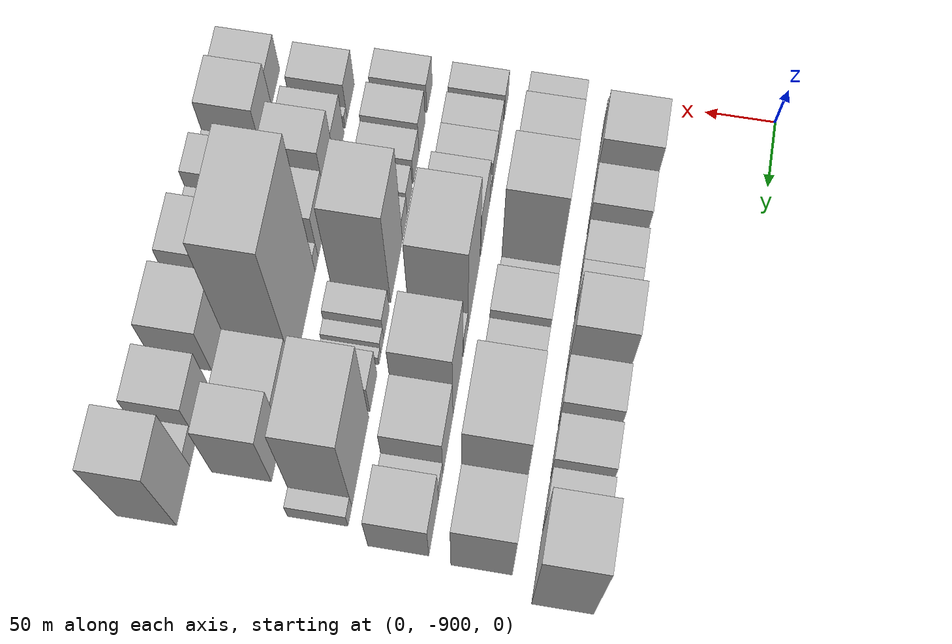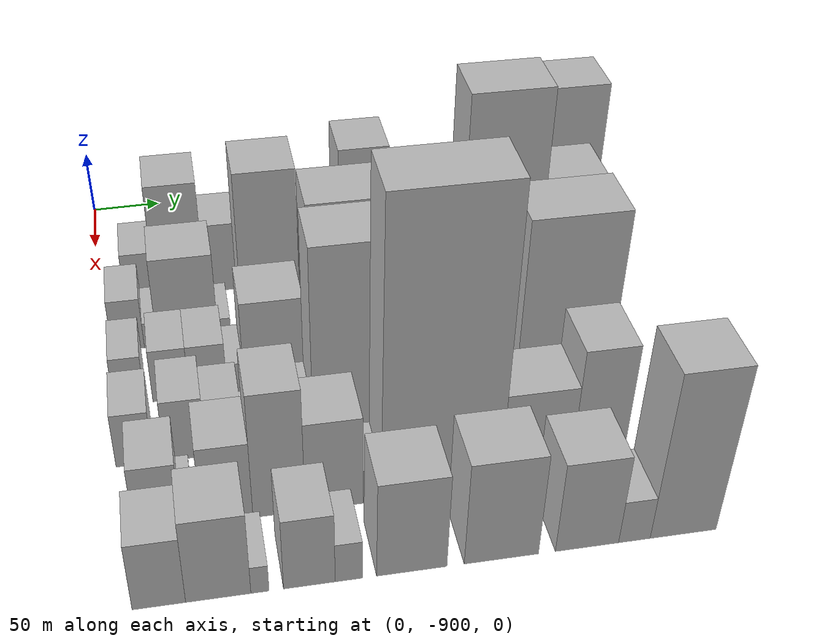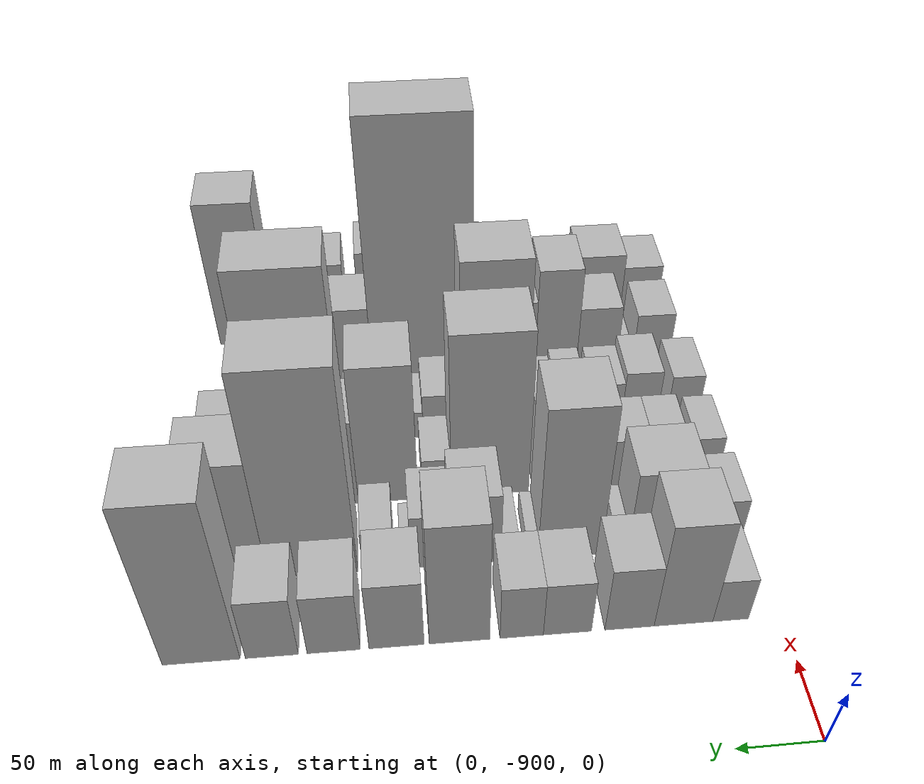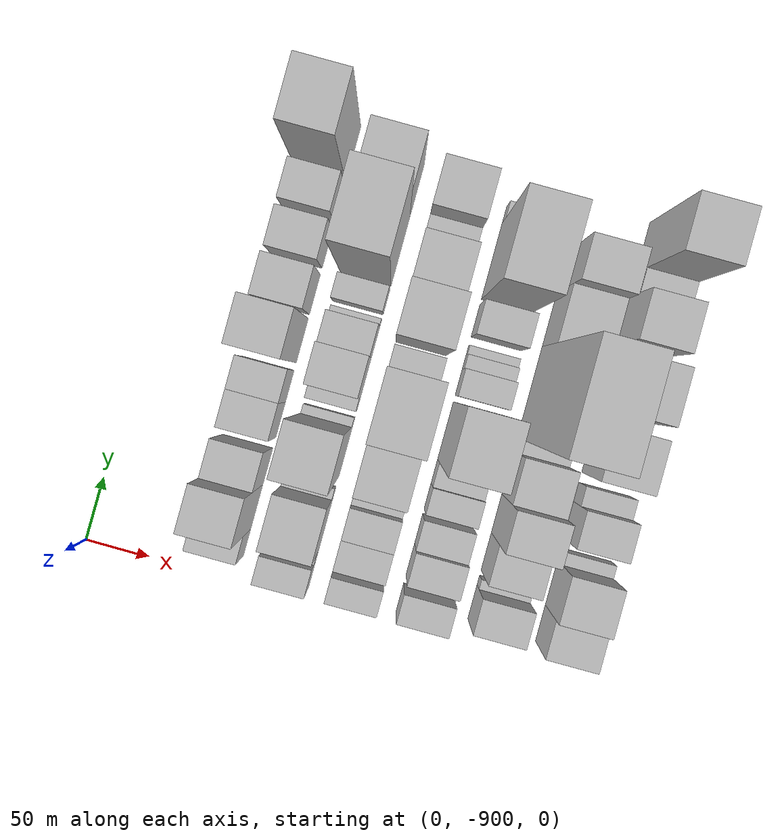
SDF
<sdf version="1.6">
 <world name="default">
  <model name="building_1">
   <static>1</static>
   <pose>100.0000 -869.1969 0 0.000000 0.000000 0.000000</pose>
   <link name="link">
    <pose>0 0 19.50 0 0 0</pose>
    <collision name="collision"><geometry><box><size>40.0000 21.6063 39.0000</size></box></geometry></collision>
    <visual name="visual">
     <cast_shadows>0</cast_shadows>
     <geometry><box><size>40.0000 21.6063 39.0000</size></box></geometry>
     <material>
      <script>
       <uri>model://HANNAS_wall/materials/scripts</uri>
       <uri>model://HANNAS_wall/materials/textures</uri>
       <name>vrc/HANNAS_wall</name>
      </script>
     </material>
    </visual>
   </link>
  </model>
  <model name="building_2">
   <static>1</static>
   <pose>100.0000 -840.7150 0 0.000000 0.000000 0.000000</pose>
   <link name="link">
    <pose>0 0 46.50 0 0 0</pose>
    <collision name="collision"><geometry><box><size>40.0000 35.3574 93.0000</size></box></geometry></collision>
    <visual name="visual">
     <cast_shadows>0</cast_shadows>
     <geometry><box><size>40.0000 35.3574 93.0000</size></box></geometry>
     <material>
      <script>
       <uri>model://HANNAS_wall/materials/scripts</uri>
       <uri>model://HANNAS_wall/materials/textures</uri>
       <name>vrc/HANNAS_wall</name>
      </script>
     </material>
    </visual>
   </link>
  </model>
  <model name="building_3">
   <static>1</static>
   <pose>100.0000 -808.2781 0 0.000000 0.000000 0.000000</pose>
   <link name="link">
    <pose>0 0 28.50 0 0 0</pose>
    <collision name="collision"><geometry><box><size>40.0000 29.5164 57.0000</size></box></geometry></collision>
    <visual name="visual">
     <cast_shadows>0</cast_shadows>
     <geometry><box><size>40.0000 29.5164 57.0000</size></box></geometry>
     <material>
      <script>
       <uri>model://HANNAS_wall/materials/scripts</uri>
       <uri>model://HANNAS_wall/materials/textures</uri>
       <name>vrc/HANNAS_wall</name>
      </script>
     </material>
    </visual>
   </link>
  </model>
  <model name="building_4">
   <static>1</static>
   <pose>100.0000 -771.2189 0 0.000000 0.000000 0.000000</pose>
   <link name="link">
    <pose>0 0 24.00 0 0 0</pose>
    <collision name="collision"><geometry><box><size>40.0000 28.6018 48.0000</size></box></geometry></collision>
    <visual name="visual">
     <cast_shadows>0</cast_shadows>
     <geometry><box><size>40.0000 28.6018 48.0000</size></box></geometry>
     <material>
      <script>
       <uri>model://HANNAS_wall/materials/scripts</uri>
       <uri>model://HANNAS_wall/materials/textures</uri>
       <name>vrc/HANNAS_wall</name>
      </script>
     </material>
    </visual>
   </link>
  </model>
  <model name="building_5">
   <static>1</static>
   <pose>100.0000 -744.1187 0 0.000000 0.000000 0.000000</pose>
   <link name="link">
    <pose>0 0 24.00 0 0 0</pose>
    <collision name="collision"><geometry><box><size>40.0000 25.5986 48.0000</size></box></geometry></collision>
    <visual name="visual">
     <cast_shadows>0</cast_shadows>
     <geometry><box><size>40.0000 25.5986 48.0000</size></box></geometry>
     <material>
      <script>
       <uri>model://HANNAS_wall/materials/scripts</uri>
       <uri>model://HANNAS_wall/materials/textures</uri>
       <name>vrc/HANNAS_wall</name>
      </script>
     </material>
    </visual>
   </link>
  </model>
  <model name="building_6">
   <static>1</static>
   <pose>100.0000 -707.5816 0 0.000000 0.000000 0.000000</pose>
   <link name="link">
    <pose>0 0 54.00 0 0 0</pose>
    <collision name="collision"><geometry><box><size>40.0000 35.4757 108.0000</size></box></geometry></collision>
    <visual name="visual">
     <cast_shadows>0</cast_shadows>
     <geometry><box><size>40.0000 35.4757 108.0000</size></box></geometry>
     <material>
      <script>
       <uri>model://HANNAS_wall/materials/scripts</uri>
       <uri>model://HANNAS_wall/materials/textures</uri>
       <name>vrc/HANNAS_wall</name>
      </script>
     </material>
    </visual>
   </link>
  </model>
  <model name="building_7">
   <static>1</static>
   <pose>100.0000 -670.7844 0 0.000000 0.000000 0.000000</pose>
   <link name="link">
    <pose>0 0 30.00 0 0 0</pose>
    <collision name="collision"><geometry><box><size>40.0000 32.1186 60.0000</size></box></geometry></collision>
    <visual name="visual">
     <cast_shadows>0</cast_shadows>
     <geometry><box><size>40.0000 32.1186 60.0000</size></box></geometry>
     <material>
      <script>
       <uri>model://HANNAS_wall/materials/scripts</uri>
       <uri>model://HANNAS_wall/materials/textures</uri>
       <name>vrc/HANNAS_wall</name>
      </script>
     </material>
    </visual>
   </link>
  </model>
  <model name="building_8">
   <static>1</static>
   <pose>100.0000 -634.3555 0 0.000000 0.000000 0.000000</pose>
   <link name="link">
    <pose>0 0 27.00 0 0 0</pose>
    <collision name="collision"><geometry><box><size>40.0000 30.7391 54.0000</size></box></geometry></collision>
    <visual name="visual">
     <cast_shadows>0</cast_shadows>
     <geometry><box><size>40.0000 30.7391 54.0000</size></box></geometry>
     <material>
      <script>
       <uri>model://HANNAS_wall/materials/scripts</uri>
       <uri>model://HANNAS_wall/materials/textures</uri>
       <name>vrc/HANNAS_wall</name>
      </script>
     </material>
    </visual>
   </link>
  </model>
  <model name="building_9">
   <static>1</static>
   <pose>100.0000 -598.7894 0 0.000000 0.000000 0.000000</pose>
   <link name="link">
    <pose>0 0 27.00 0 0 0</pose>
    <collision name="collision"><geometry><box><size>40.0000 30.3932 54.0000</size></box></geometry></collision>
    <visual name="visual">
     <cast_shadows>0</cast_shadows>
     <geometry><box><size>40.0000 30.3932 54.0000</size></box></geometry>
     <material>
      <script>
       <uri>model://HANNAS_wall/materials/scripts</uri>
       <uri>model://HANNAS_wall/materials/textures</uri>
       <name>vrc/HANNAS_wall</name>
      </script>
     </material>
    </visual>
   </link>
  </model>
  <model name="building_10">
   <static>1</static>
   <pose>100.0000 -558.4345 0 0.000000 0.000000 0.000000</pose>
   <link name="link">
    <pose>0 0 70.50 0 0 0</pose>
    <collision name="collision"><geometry><box><size>40.0000 44.3166 141.0000</size></box></geometry></collision>
    <visual name="visual">
     <cast_shadows>0</cast_shadows>
     <geometry><box><size>40.0000 44.3166 141.0000</size></box></geometry>
     <material>
      <script>
       <uri>model://HANNAS_wall/materials/scripts</uri>
       <uri>model://HANNAS_wall/materials/textures</uri>
       <name>vrc/HANNAS_wall</name>
      </script>
     </material>
    </visual>
   </link>
  </model>
  <model name="building_55">
   <static>1</static>
   <pose>155.0000 -879.1581 0 0.000000 0.000000 0.000000</pose>
   <link name="link">
    <pose>0 0 21.00 0 0 0</pose>
    <collision name="collision"><geometry><box><size>40.0000 21.6838 42.0000</size></box></geometry></collision>
    <visual name="visual">
     <cast_shadows>0</cast_shadows>
     <geometry><box><size>40.0000 21.6838 42.0000</size></box></geometry>
     <material>
      <script>
       <uri>model://HANNAS_wall/materials/scripts</uri>
       <uri>model://HANNAS_wall/materials/textures</uri>
       <name>vrc/HANNAS_wall</name>
      </script>
     </material>
    </visual>
   </link>
  </model>
  <model name="building_56">
   <static>1</static>
   <pose>155.0000 -863.9852 0 0.000000 0.000000 0.000000</pose>
   <link name="link">
    <pose>0 0 10.50 0 0 0</pose>
    <collision name="collision"><geometry><box><size>40.0000 8.6621 21.0000</size></box></geometry></collision>
    <visual name="visual">
     <cast_shadows>0</cast_shadows>
     <geometry><box><size>40.0000 8.6621 21.0000</size></box></geometry>
     <material>
      <script>
       <uri>model://HANNAS_wall/materials/scripts</uri>
       <uri>model://HANNAS_wall/materials/textures</uri>
       <name>vrc/HANNAS_wall</name>
      </script>
     </material>
    </visual>
   </link>
  </model>
  <model name="building_57">
   <static>1</static>
   <pose>155.0000 -838.8582 0 0.000000 0.000000 0.000000</pose>
   <link name="link">
    <pose>0 0 36.00 0 0 0</pose>
    <collision name="collision"><geometry><box><size>40.0000 41.5917 72.0000</size></box></geometry></collision>
    <visual name="visual">
     <cast_shadows>0</cast_shadows>
     <geometry><box><size>40.0000 41.5917 72.0000</size></box></geometry>
     <material>
      <script>
       <uri>model://HANNAS_wall/materials/scripts</uri>
       <uri>model://HANNAS_wall/materials/textures</uri>
       <name>vrc/HANNAS_wall</name>
      </script>
     </material>
    </visual>
   </link>
  </model>
  <model name="building_58">
   <static>1</static>
   <pose>155.0000 -813.6436 0 0.000000 0.000000 0.000000</pose>
   <link name="link">
    <pose>0 0 9.00 0 0 0</pose>
    <collision name="collision"><geometry><box><size>40.0000 8.8376 18.0000</size></box></geometry></collision>
    <visual name="visual">
     <cast_shadows>0</cast_shadows>
     <geometry><box><size>40.0000 8.8376 18.0000</size></box></geometry>
     <material>
      <script>
       <uri>model://HANNAS_wall/materials/scripts</uri>
       <uri>model://HANNAS_wall/materials/textures</uri>
       <name>vrc/HANNAS_wall</name>
      </script>
     </material>
    </visual>
   </link>
  </model>
  <model name="building_59">
   <static>1</static>
   <pose>155.0000 -781.1763 0 0.000000 0.000000 0.000000</pose>
   <link name="link">
    <pose>0 0 66.00 0 0 0</pose>
    <collision name="collision"><geometry><box><size>40.0000 40.0968 132.0000</size></box></geometry></collision>
    <visual name="visual">
     <cast_shadows>0</cast_shadows>
     <geometry><box><size>40.0000 40.0968 132.0000</size></box></geometry>
     <material>
      <script>
       <uri>model://HANNAS_wall/materials/scripts</uri>
       <uri>model://HANNAS_wall/materials/textures</uri>
       <name>vrc/HANNAS_wall</name>
      </script>
     </material>
    </visual>
   </link>
  </model>
  <model name="building_60">
   <static>1</static>
   <pose>155.0000 -757.4105 0 0.000000 0.000000 0.000000</pose>
   <link name="link">
    <pose>0 0 9.00 0 0 0</pose>
    <collision name="collision"><geometry><box><size>40.0000 7.4349 18.0000</size></box></geometry></collision>
    <visual name="visual">
     <cast_shadows>0</cast_shadows>
     <geometry><box><size>40.0000 7.4349 18.0000</size></box></geometry>
     <material>
      <script>
       <uri>model://HANNAS_wall/materials/scripts</uri>
       <uri>model://HANNAS_wall/materials/textures</uri>
       <name>vrc/HANNAS_wall</name>
      </script>
     </material>
    </visual>
   </link>
  </model>
  <model name="building_61">
   <static>1</static>
   <pose>155.0000 -743.4360 0 0.000000 0.000000 0.000000</pose>
   <link name="link">
    <pose>0 0 12.00 0 0 0</pose>
    <collision name="collision"><geometry><box><size>40.0000 10.5141 24.0000</size></box></geometry></collision>
    <visual name="visual">
     <cast_shadows>0</cast_shadows>
     <geometry><box><size>40.0000 10.5141 24.0000</size></box></geometry>
     <material>
      <script>
       <uri>model://HANNAS_wall/materials/scripts</uri>
       <uri>model://HANNAS_wall/materials/textures</uri>
       <name>vrc/HANNAS_wall</name>
      </script>
     </material>
    </visual>
   </link>
  </model>
  <model name="building_62">
   <static>1</static>
   <pose>155.0000 -722.3975 0 0.000000 0.000000 0.000000</pose>
   <link name="link">
    <pose>0 0 31.50 0 0 0</pose>
    <collision name="collision"><geometry><box><size>40.0000 31.5630 63.0000</size></box></geometry></collision>
    <visual name="visual">
     <cast_shadows>0</cast_shadows>
     <geometry><box><size>40.0000 31.5630 63.0000</size></box></geometry>
     <material>
      <script>
       <uri>model://HANNAS_wall/materials/scripts</uri>
       <uri>model://HANNAS_wall/materials/textures</uri>
       <name>vrc/HANNAS_wall</name>
      </script>
     </material>
    </visual>
   </link>
  </model>
  <model name="building_63">
   <static>1</static>
   <pose>155.0000 -694.3487 0 0.000000 0.000000 0.000000</pose>
   <link name="link">
    <pose>0 0 24.00 0 0 0</pose>
    <collision name="collision"><geometry><box><size>40.0000 24.5346 48.0000</size></box></geometry></collision>
    <visual name="visual">
     <cast_shadows>0</cast_shadows>
     <geometry><box><size>40.0000 24.5346 48.0000</size></box></geometry>
     <material>
      <script>
       <uri>model://HANNAS_wall/materials/scripts</uri>
       <uri>model://HANNAS_wall/materials/textures</uri>
       <name>vrc/HANNAS_wall</name>
      </script>
     </material>
    </visual>
   </link>
  </model>
  <model name="building_64">
   <static>1</static>
   <pose>155.0000 -678.9963 0 0.000000 0.000000 0.000000</pose>
   <link name="link">
    <pose>0 0 7.50 0 0 0</pose>
    <collision name="collision"><geometry><box><size>40.0000 6.1702 15.0000</size></box></geometry></collision>
    <visual name="visual">
     <cast_shadows>0</cast_shadows>
     <geometry><box><size>40.0000 6.1702 15.0000</size></box></geometry>
     <material>
      <script>
       <uri>model://HANNAS_wall/materials/scripts</uri>
       <uri>model://HANNAS_wall/materials/textures</uri>
       <name>vrc/HANNAS_wall</name>
      </script>
     </material>
    </visual>
   </link>
  </model>
  <model name="building_65">
   <static>1</static>
   <pose>155.0000 -662.1134 0 0.000000 0.000000 0.000000</pose>
   <link name="link">
    <pose>0 0 18.00 0 0 0</pose>
    <collision name="collision"><geometry><box><size>40.0000 19.5956 36.0000</size></box></geometry></collision>
    <visual name="visual">
     <cast_shadows>0</cast_shadows>
     <geometry><box><size>40.0000 19.5956 36.0000</size></box></geometry>
     <material>
      <script>
       <uri>model://HANNAS_wall/materials/scripts</uri>
       <uri>model://HANNAS_wall/materials/textures</uri>
       <name>vrc/HANNAS_wall</name>
      </script>
     </material>
    </visual>
   </link>
  </model>
  <model name="building_66">
   <static>1</static>
   <pose>155.0000 -621.7221 0 0.000000 0.000000 0.000000</pose>
   <link name="link">
    <pose>0 0 87.00 0 0 0</pose>
    <collision name="collision"><geometry><box><size>40.0000 55.1869 174.0000</size></box></geometry></collision>
    <visual name="visual">
     <cast_shadows>0</cast_shadows>
     <geometry><box><size>40.0000 55.1869 174.0000</size></box></geometry>
     <material>
      <script>
       <uri>model://HANNAS_wall/materials/scripts</uri>
       <uri>model://HANNAS_wall/materials/textures</uri>
       <name>vrc/HANNAS_wall</name>
      </script>
     </material>
    </visual>
   </link>
  </model>
  <model name="building_67">
   <static>1</static>
   <pose>155.0000 -573.3513 0 0.000000 0.000000 0.000000</pose>
   <link name="link">
    <pose>0 0 52.50 0 0 0</pose>
    <collision name="collision"><geometry><box><size>40.0000 41.5547 105.0000</size></box></geometry></collision>
    <visual name="visual">
     <cast_shadows>0</cast_shadows>
     <geometry><box><size>40.0000 41.5547 105.0000</size></box></geometry>
     <material>
      <script>
       <uri>model://HANNAS_wall/materials/scripts</uri>
       <uri>model://HANNAS_wall/materials/textures</uri>
       <name>vrc/HANNAS_wall</name>
      </script>
     </material>
    </visual>
   </link>
  </model>
  <model name="building_108">
   <static>1</static>
   <pose>210.0000 -880.0709 0 0.000000 0.000000 0.000000</pose>
   <link name="link">
    <pose>0 0 19.50 0 0 0</pose>
    <collision name="collision"><geometry><box><size>40.0000 19.8581 39.0000</size></box></geometry></collision>
    <visual name="visual">
     <cast_shadows>0</cast_shadows>
     <geometry><box><size>40.0000 19.8581 39.0000</size></box></geometry>
     <material>
      <script>
       <uri>model://HANNAS_wall/materials/scripts</uri>
       <uri>model://HANNAS_wall/materials/textures</uri>
       <name>vrc/HANNAS_wall</name>
      </script>
     </material>
    </visual>
   </link>
  </model>
  <model name="building_109">
   <static>1</static>
   <pose>210.0000 -853.3707 0 0.000000 0.000000 0.000000</pose>
   <link name="link">
    <pose>0 0 21.00 0 0 0</pose>
    <collision name="collision"><geometry><box><size>40.0000 23.5423 42.0000</size></box></geometry></collision>
    <visual name="visual">
     <cast_shadows>0</cast_shadows>
     <geometry><box><size>40.0000 23.5423 42.0000</size></box></geometry>
     <material>
      <script>
       <uri>model://HANNAS_wall/materials/scripts</uri>
       <uri>model://HANNAS_wall/materials/textures</uri>
       <name>vrc/HANNAS_wall</name>
      </script>
     </material>
    </visual>
   </link>
  </model>
  <model name="building_110">
   <static>1</static>
   <pose>210.0000 -829.2890 0 0.000000 0.000000 0.000000</pose>
   <link name="link">
    <pose>0 0 21.00 0 0 0</pose>
    <collision name="collision"><geometry><box><size>40.0000 24.6212 42.0000</size></box></geometry></collision>
    <visual name="visual">
     <cast_shadows>0</cast_shadows>
     <geometry><box><size>40.0000 24.6212 42.0000</size></box></geometry>
     <material>
      <script>
       <uri>model://HANNAS_wall/materials/scripts</uri>
       <uri>model://HANNAS_wall/materials/textures</uri>
       <name>vrc/HANNAS_wall</name>
      </script>
     </material>
    </visual>
   </link>
  </model>
  <model name="building_111">
   <static>1</static>
   <pose>210.0000 -811.3701 0 0.000000 0.000000 0.000000</pose>
   <link name="link">
    <pose>0 0 12.00 0 0 0</pose>
    <collision name="collision"><geometry><box><size>40.0000 11.2167 24.0000</size></box></geometry></collision>
    <visual name="visual">
     <cast_shadows>0</cast_shadows>
     <geometry><box><size>40.0000 11.2167 24.0000</size></box></geometry>
     <material>
      <script>
       <uri>model://HANNAS_wall/materials/scripts</uri>
       <uri>model://HANNAS_wall/materials/textures</uri>
       <name>vrc/HANNAS_wall</name>
      </script>
     </material>
    </visual>
   </link>
  </model>
  <model name="building_112">
   <static>1</static>
   <pose>210.0000 -785.6438 0 0.000000 0.000000 0.000000</pose>
   <link name="link">
    <pose>0 0 36.00 0 0 0</pose>
    <collision name="collision"><geometry><box><size>40.0000 40.2358 72.0000</size></box></geometry></collision>
    <visual name="visual">
     <cast_shadows>0</cast_shadows>
     <geometry><box><size>40.0000 40.2358 72.0000</size></box></geometry>
     <material>
      <script>
       <uri>model://HANNAS_wall/materials/scripts</uri>
       <uri>model://HANNAS_wall/materials/textures</uri>
       <name>vrc/HANNAS_wall</name>
      </script>
     </material>
    </visual>
   </link>
  </model>
  <model name="building_113">
   <static>1</static>
   <pose>210.0000 -736.9311 0 0.000000 0.000000 0.000000</pose>
   <link name="link">
    <pose>0 0 70.50 0 0 0</pose>
    <collision name="collision"><geometry><box><size>40.0000 51.1895 141.0000</size></box></geometry></collision>
    <visual name="visual">
     <cast_shadows>0</cast_shadows>
     <geometry><box><size>40.0000 51.1895 141.0000</size></box></geometry>
     <material>
      <script>
       <uri>model://HANNAS_wall/materials/scripts</uri>
       <uri>model://HANNAS_wall/materials/textures</uri>
       <name>vrc/HANNAS_wall</name>
      </script>
     </material>
    </visual>
   </link>
  </model>
  <model name="building_114">
   <static>1</static>
   <pose>210.0000 -701.9579 0 0.000000 0.000000 0.000000</pose>
   <link name="link">
    <pose>0 0 18.00 0 0 0</pose>
    <collision name="collision"><geometry><box><size>40.0000 18.7569 36.0000</size></box></geometry></collision>
    <visual name="visual">
     <cast_shadows>0</cast_shadows>
     <geometry><box><size>40.0000 18.7569 36.0000</size></box></geometry>
     <material>
      <script>
       <uri>model://HANNAS_wall/materials/scripts</uri>
       <uri>model://HANNAS_wall/materials/textures</uri>
       <name>vrc/HANNAS_wall</name>
      </script>
     </material>
    </visual>
   </link>
  </model>
  <model name="building_115">
   <static>1</static>
   <pose>210.0000 -669.9927 0 0.000000 0.000000 0.000000</pose>
   <link name="link">
    <pose>0 0 60.00 0 0 0</pose>
    <collision name="collision"><geometry><box><size>40.0000 39.1734 120.0000</size></box></geometry></collision>
    <visual name="visual">
     <cast_shadows>0</cast_shadows>
     <geometry><box><size>40.0000 39.1734 120.0000</size></box></geometry>
     <material>
      <script>
       <uri>model://HANNAS_wall/materials/scripts</uri>
       <uri>model://HANNAS_wall/materials/textures</uri>
       <name>vrc/HANNAS_wall</name>
      </script>
     </material>
    </visual>
   </link>
  </model>
  <model name="building_116">
   <static>1</static>
   <pose>210.0000 -630.2434 0 0.000000 0.000000 0.000000</pose>
   <link name="link">
    <pose>0 0 37.50 0 0 0</pose>
    <collision name="collision"><geometry><box><size>40.0000 40.3252 75.0000</size></box></geometry></collision>
    <visual name="visual">
     <cast_shadows>0</cast_shadows>
     <geometry><box><size>40.0000 40.3252 75.0000</size></box></geometry>
     <material>
      <script>
       <uri>model://HANNAS_wall/materials/scripts</uri>
       <uri>model://HANNAS_wall/materials/textures</uri>
       <name>vrc/HANNAS_wall</name>
      </script>
     </material>
    </visual>
   </link>
  </model>
  <model name="building_117">
   <static>1</static>
   <pose>210.0000 -601.4040 0 0.000000 0.000000 0.000000</pose>
   <link name="link">
    <pose>0 0 16.50 0 0 0</pose>
    <collision name="collision"><geometry><box><size>40.0000 17.3537 33.0000</size></box></geometry></collision>
    <visual name="visual">
     <cast_shadows>0</cast_shadows>
     <geometry><box><size>40.0000 17.3537 33.0000</size></box></geometry>
     <material>
      <script>
       <uri>model://HANNAS_wall/materials/scripts</uri>
       <uri>model://HANNAS_wall/materials/textures</uri>
       <name>vrc/HANNAS_wall</name>
      </script>
     </material>
    </visual>
   </link>
  </model>
  <model name="building_118">
   <static>1</static>
   <pose>210.0000 -574.3709 0 0.000000 0.000000 0.000000</pose>
   <link name="link">
    <pose>0 0 36.00 0 0 0</pose>
    <collision name="collision"><geometry><box><size>40.0000 36.7125 72.0000</size></box></geometry></collision>
    <visual name="visual">
     <cast_shadows>0</cast_shadows>
     <geometry><box><size>40.0000 36.7125 72.0000</size></box></geometry>
     <material>
      <script>
       <uri>model://HANNAS_wall/materials/scripts</uri>
       <uri>model://HANNAS_wall/materials/textures</uri>
       <name>vrc/HANNAS_wall</name>
      </script>
     </material>
    </visual>
   </link>
  </model>
  <model name="building_157">
   <static>1</static>
   <pose>265.0000 -878.7255 0 0.000000 0.000000 0.000000</pose>
   <link name="link">
    <pose>0 0 21.00 0 0 0</pose>
    <collision name="collision"><geometry><box><size>40.0000 22.5489 42.0000</size></box></geometry></collision>
    <visual name="visual">
     <cast_shadows>0</cast_shadows>
     <geometry><box><size>40.0000 22.5489 42.0000</size></box></geometry>
     <material>
      <script>
       <uri>model://HANNAS_wall/materials/scripts</uri>
       <uri>model://HANNAS_wall/materials/textures</uri>
       <name>vrc/HANNAS_wall</name>
      </script>
     </material>
    </visual>
   </link>
  </model>
  <model name="building_158">
   <static>1</static>
   <pose>265.0000 -847.7572 0 0.000000 0.000000 0.000000</pose>
   <link name="link">
    <pose>0 0 24.00 0 0 0</pose>
    <collision name="collision"><geometry><box><size>40.0000 25.3876 48.0000</size></box></geometry></collision>
    <visual name="visual">
     <cast_shadows>0</cast_shadows>
     <geometry><box><size>40.0000 25.3876 48.0000</size></box></geometry>
     <material>
      <script>
       <uri>model://HANNAS_wall/materials/scripts</uri>
       <uri>model://HANNAS_wall/materials/textures</uri>
       <name>vrc/HANNAS_wall</name>
      </script>
     </material>
    </visual>
   </link>
  </model>
  <model name="building_159">
   <static>1</static>
   <pose>265.0000 -823.3934 0 0.000000 0.000000 0.000000</pose>
   <link name="link">
    <pose>0 0 19.50 0 0 0</pose>
    <collision name="collision"><geometry><box><size>40.0000 23.3401 39.0000</size></box></geometry></collision>
    <visual name="visual">
     <cast_shadows>0</cast_shadows>
     <geometry><box><size>40.0000 23.3401 39.0000</size></box></geometry>
     <material>
      <script>
       <uri>model://HANNAS_wall/materials/scripts</uri>
       <uri>model://HANNAS_wall/materials/textures</uri>
       <name>vrc/HANNAS_wall</name>
      </script>
     </material>
    </visual>
   </link>
  </model>
  <model name="building_160">
   <static>1</static>
   <pose>265.0000 -797.4604 0 0.000000 0.000000 0.000000</pose>
   <link name="link">
    <pose>0 0 19.50 0 0 0</pose>
    <collision name="collision"><geometry><box><size>40.0000 20.5258 39.0000</size></box></geometry></collision>
    <visual name="visual">
     <cast_shadows>0</cast_shadows>
     <geometry><box><size>40.0000 20.5258 39.0000</size></box></geometry>
     <material>
      <script>
       <uri>model://HANNAS_wall/materials/scripts</uri>
       <uri>model://HANNAS_wall/materials/textures</uri>
       <name>vrc/HANNAS_wall</name>
      </script>
     </material>
    </visual>
   </link>
  </model>
  <model name="building_161">
   <static>1</static>
   <pose>265.0000 -777.8115 0 0.000000 0.000000 0.000000</pose>
   <link name="link">
    <pose>0 0 16.50 0 0 0</pose>
    <collision name="collision"><geometry><box><size>40.0000 18.7721 33.0000</size></box></geometry></collision>
    <visual name="visual">
     <cast_shadows>0</cast_shadows>
     <geometry><box><size>40.0000 18.7721 33.0000</size></box></geometry>
     <material>
      <script>
       <uri>model://HANNAS_wall/materials/scripts</uri>
       <uri>model://HANNAS_wall/materials/textures</uri>
       <name>vrc/HANNAS_wall</name>
      </script>
     </material>
    </visual>
   </link>
  </model>
  <model name="building_162">
   <static>1</static>
   <pose>265.0000 -745.3612 0 0.000000 0.000000 0.000000</pose>
   <link name="link">
    <pose>0 0 75.00 0 0 0</pose>
    <collision name="collision"><geometry><box><size>40.0000 46.1286 150.0000</size></box></geometry></collision>
    <visual name="visual">
     <cast_shadows>0</cast_shadows>
     <geometry><box><size>40.0000 46.1286 150.0000</size></box></geometry>
     <material>
      <script>
       <uri>model://HANNAS_wall/materials/scripts</uri>
       <uri>model://HANNAS_wall/materials/textures</uri>
       <name>vrc/HANNAS_wall</name>
      </script>
     </material>
    </visual>
   </link>
  </model>
  <model name="building_163">
   <static>1</static>
   <pose>265.0000 -706.7123 0 0.000000 0.000000 0.000000</pose>
   <link name="link">
    <pose>0 0 19.50 0 0 0</pose>
    <collision name="collision"><geometry><box><size>40.0000 21.1692 39.0000</size></box></geometry></collision>
    <visual name="visual">
     <cast_shadows>0</cast_shadows>
     <geometry><box><size>40.0000 21.1692 39.0000</size></box></geometry>
     <material>
      <script>
       <uri>model://HANNAS_wall/materials/scripts</uri>
       <uri>model://HANNAS_wall/materials/textures</uri>
       <name>vrc/HANNAS_wall</name>
      </script>
     </material>
    </visual>
   </link>
  </model>
  <model name="building_164">
   <static>1</static>
   <pose>265.0000 -690.4866 0 0.000000 0.000000 0.000000</pose>
   <link name="link">
    <pose>0 0 12.00 0 0 0</pose>
    <collision name="collision"><geometry><box><size>40.0000 11.2822 24.0000</size></box></geometry></collision>
    <visual name="visual">
     <cast_shadows>0</cast_shadows>
     <geometry><box><size>40.0000 11.2822 24.0000</size></box></geometry>
     <material>
      <script>
       <uri>model://HANNAS_wall/materials/scripts</uri>
       <uri>model://HANNAS_wall/materials/textures</uri>
       <name>vrc/HANNAS_wall</name>
      </script>
     </material>
    </visual>
   </link>
  </model>
  <model name="building_165">
   <static>1</static>
   <pose>265.0000 -681.2058 0 0.000000 0.000000 0.000000</pose>
   <link name="link">
    <pose>0 0 7.50 0 0 0</pose>
    <collision name="collision"><geometry><box><size>40.0000 7.2794 15.0000</size></box></geometry></collision>
    <visual name="visual">
     <cast_shadows>0</cast_shadows>
     <geometry><box><size>40.0000 7.2794 15.0000</size></box></geometry>
     <material>
      <script>
       <uri>model://HANNAS_wall/materials/scripts</uri>
       <uri>model://HANNAS_wall/materials/textures</uri>
       <name>vrc/HANNAS_wall</name>
      </script>
     </material>
    </visual>
   </link>
  </model>
  <model name="building_166">
   <static>1</static>
   <pose>265.0000 -657.5472 0 0.000000 0.000000 0.000000</pose>
   <link name="link">
    <pose>0 0 25.50 0 0 0</pose>
    <collision name="collision"><geometry><box><size>40.0000 26.0378 51.0000</size></box></geometry></collision>
    <visual name="visual">
     <cast_shadows>0</cast_shadows>
     <geometry><box><size>40.0000 26.0378 51.0000</size></box></geometry>
     <material>
      <script>
       <uri>model://HANNAS_wall/materials/scripts</uri>
       <uri>model://HANNAS_wall/materials/textures</uri>
       <name>vrc/HANNAS_wall</name>
      </script>
     </material>
    </visual>
   </link>
  </model>
  <model name="building_167">
   <static>1</static>
   <pose>265.0000 -610.1065 0 0.000000 0.000000 0.000000</pose>
   <link name="link">
    <pose>0 0 76.50 0 0 0</pose>
    <collision name="collision"><geometry><box><size>40.0000 60.8436 153.0000</size></box></geometry></collision>
    <visual name="visual">
     <cast_shadows>0</cast_shadows>
     <geometry><box><size>40.0000 60.8436 153.0000</size></box></geometry>
     <material>
      <script>
       <uri>model://HANNAS_wall/materials/scripts</uri>
       <uri>model://HANNAS_wall/materials/textures</uri>
       <name>vrc/HANNAS_wall</name>
      </script>
     </material>
    </visual>
   </link>
  </model>
  <model name="building_168">
   <static>1</static>
   <pose>265.0000 -573.0785 0 0.000000 0.000000 0.000000</pose>
   <link name="link">
    <pose>0 0 13.50 0 0 0</pose>
    <collision name="collision"><geometry><box><size>40.0000 13.2125 27.0000</size></box></geometry></collision>
    <visual name="visual">
     <cast_shadows>0</cast_shadows>
     <geometry><box><size>40.0000 13.2125 27.0000</size></box></geometry>
     <material>
      <script>
       <uri>model://HANNAS_wall/materials/scripts</uri>
       <uri>model://HANNAS_wall/materials/textures</uri>
       <name>vrc/HANNAS_wall</name>
      </script>
     </material>
    </visual>
   </link>
  </model>
  <model name="building_218">
   <static>1</static>
   <pose>320.0000 -867.3627 0 0.000000 0.000000 0.000000</pose>
   <link name="link">
    <pose>0 0 25.50 0 0 0</pose>
    <collision name="collision"><geometry><box><size>40.0000 27.2746 51.0000</size></box></geometry></collision>
    <visual name="visual">
     <cast_shadows>0</cast_shadows>
     <geometry><box><size>40.0000 27.2746 51.0000</size></box></geometry>
     <material>
      <script>
       <uri>model://HANNAS_wall/materials/scripts</uri>
       <uri>model://HANNAS_wall/materials/textures</uri>
       <name>vrc/HANNAS_wall</name>
      </script>
     </material>
    </visual>
   </link>
  </model>
  <model name="building_219">
   <static>1</static>
   <pose>320.0000 -849.9187 0 0.000000 0.000000 0.000000</pose>
   <link name="link">
    <pose>0 0 9.00 0 0 0</pose>
    <collision name="collision"><geometry><box><size>40.0000 7.6133 18.0000</size></box></geometry></collision>
    <visual name="visual">
     <cast_shadows>0</cast_shadows>
     <geometry><box><size>40.0000 7.6133 18.0000</size></box></geometry>
     <material>
      <script>
       <uri>model://HANNAS_wall/materials/scripts</uri>
       <uri>model://HANNAS_wall/materials/textures</uri>
       <name>vrc/HANNAS_wall</name>
      </script>
     </material>
    </visual>
   </link>
  </model>
  <model name="building_220">
   <static>1</static>
   <pose>320.0000 -827.0747 0 0.000000 0.000000 0.000000</pose>
   <link name="link">
    <pose>0 0 30.00 0 0 0</pose>
    <collision name="collision"><geometry><box><size>40.0000 30.0748 60.0000</size></box></geometry></collision>
    <visual name="visual">
     <cast_shadows>0</cast_shadows>
     <geometry><box><size>40.0000 30.0748 60.0000</size></box></geometry>
     <material>
      <script>
       <uri>model://HANNAS_wall/materials/scripts</uri>
       <uri>model://HANNAS_wall/materials/textures</uri>
       <name>vrc/HANNAS_wall</name>
      </script>
     </material>
    </visual>
   </link>
  </model>
  <model name="building_221">
   <static>1</static>
   <pose>320.0000 -796.6579 0 0.000000 0.000000 0.000000</pose>
   <link name="link">
    <pose>0 0 48.00 0 0 0</pose>
    <collision name="collision"><geometry><box><size>40.0000 30.7588 96.0000</size></box></geometry></collision>
    <visual name="visual">
     <cast_shadows>0</cast_shadows>
     <geometry><box><size>40.0000 30.7588 96.0000</size></box></geometry>
     <material>
      <script>
       <uri>model://HANNAS_wall/materials/scripts</uri>
       <uri>model://HANNAS_wall/materials/textures</uri>
       <name>vrc/HANNAS_wall</name>
      </script>
     </material>
    </visual>
   </link>
  </model>
  <model name="building_222">
   <static>1</static>
   <pose>320.0000 -764.0114 0 0.000000 0.000000 0.000000</pose>
   <link name="link">
    <pose>0 0 34.50 0 0 0</pose>
    <collision name="collision"><geometry><box><size>40.0000 34.5341 69.0000</size></box></geometry></collision>
    <visual name="visual">
     <cast_shadows>0</cast_shadows>
     <geometry><box><size>40.0000 34.5341 69.0000</size></box></geometry>
     <material>
      <script>
       <uri>model://HANNAS_wall/materials/scripts</uri>
       <uri>model://HANNAS_wall/materials/textures</uri>
       <name>vrc/HANNAS_wall</name>
      </script>
     </material>
    </visual>
   </link>
  </model>
  <model name="building_223">
   <static>1</static>
   <pose>320.0000 -741.3206 0 0.000000 0.000000 0.000000</pose>
   <link name="link">
    <pose>0 0 13.50 0 0 0</pose>
    <collision name="collision"><geometry><box><size>40.0000 10.8476 27.0000</size></box></geometry></collision>
    <visual name="visual">
     <cast_shadows>0</cast_shadows>
     <geometry><box><size>40.0000 10.8476 27.0000</size></box></geometry>
     <material>
      <script>
       <uri>model://HANNAS_wall/materials/scripts</uri>
       <uri>model://HANNAS_wall/materials/textures</uri>
       <name>vrc/HANNAS_wall</name>
      </script>
     </material>
    </visual>
   </link>
  </model>
  <model name="building_224">
   <static>1</static>
   <pose>320.0000 -699.4676 0 0.000000 0.000000 0.000000</pose>
   <link name="link">
    <pose>0 0 109.50 0 0 0</pose>
    <collision name="collision"><geometry><box><size>40.0000 72.8583 219.0000</size></box></geometry></collision>
    <visual name="visual">
     <cast_shadows>0</cast_shadows>
     <geometry><box><size>40.0000 72.8583 219.0000</size></box></geometry>
     <material>
      <script>
       <uri>model://HANNAS_wall/materials/scripts</uri>
       <uri>model://HANNAS_wall/materials/textures</uri>
       <name>vrc/HANNAS_wall</name>
      </script>
     </material>
    </visual>
   </link>
  </model>
  <model name="building_225">
   <static>1</static>
   <pose>320.0000 -641.4671 0 0.000000 0.000000 0.000000</pose>
   <link name="link">
    <pose>0 0 36.00 0 0 0</pose>
    <collision name="collision"><geometry><box><size>40.0000 43.1426 72.0000</size></box></geometry></collision>
    <visual name="visual">
     <cast_shadows>0</cast_shadows>
     <geometry><box><size>40.0000 43.1426 72.0000</size></box></geometry>
     <material>
      <script>
       <uri>model://HANNAS_wall/materials/scripts</uri>
       <uri>model://HANNAS_wall/materials/textures</uri>
       <name>vrc/HANNAS_wall</name>
      </script>
     </material>
    </visual>
   </link>
  </model>
  <model name="building_226">
   <static>1</static>
   <pose>320.0000 -603.5708 0 0.000000 0.000000 0.000000</pose>
   <link name="link">
    <pose>0 0 49.50 0 0 0</pose>
    <collision name="collision"><geometry><box><size>40.0000 32.6502 99.0000</size></box></geometry></collision>
    <visual name="visual">
     <cast_shadows>0</cast_shadows>
     <geometry><box><size>40.0000 32.6502 99.0000</size></box></geometry>
     <material>
      <script>
       <uri>model://HANNAS_wall/materials/scripts</uri>
       <uri>model://HANNAS_wall/materials/textures</uri>
       <name>vrc/HANNAS_wall</name>
      </script>
     </material>
    </visual>
   </link>
  </model>
  <model name="building_270">
   <static>1</static>
   <pose>375.0000 -869.4827 0 0.000000 0.000000 0.000000</pose>
   <link name="link">
    <pose>0 0 25.50 0 0 0</pose>
    <collision name="collision"><geometry><box><size>40.0000 29.0347 51.0000</size></box></geometry></collision>
    <visual name="visual">
     <cast_shadows>0</cast_shadows>
     <geometry><box><size>40.0000 29.0347 51.0000</size></box></geometry>
     <material>
      <script>
       <uri>model://HANNAS_wall/materials/scripts</uri>
       <uri>model://HANNAS_wall/materials/textures</uri>
       <name>vrc/HANNAS_wall</name>
      </script>
     </material>
    </visual>
   </link>
  </model>
  <model name="building_271">
   <static>1</static>
   <pose>375.0000 -837.0452 0 0.000000 0.000000 0.000000</pose>
   <link name="link">
    <pose>0 0 31.50 0 0 0</pose>
    <collision name="collision"><geometry><box><size>40.0000 35.8402 63.0000</size></box></geometry></collision>
    <visual name="visual">
     <cast_shadows>0</cast_shadows>
     <geometry><box><size>40.0000 35.8402 63.0000</size></box></geometry>
     <material>
      <script>
       <uri>model://HANNAS_wall/materials/scripts</uri>
       <uri>model://HANNAS_wall/materials/textures</uri>
       <name>vrc/HANNAS_wall</name>
      </script>
     </material>
    </visual>
   </link>
  </model>
  <model name="building_272">
   <static>1</static>
   <pose>375.0000 -814.0891 0 0.000000 0.000000 0.000000</pose>
   <link name="link">
    <pose>0 0 10.50 0 0 0</pose>
    <collision name="collision"><geometry><box><size>40.0000 10.0720 21.0000</size></box></geometry></collision>
    <visual name="visual">
     <cast_shadows>0</cast_shadows>
     <geometry><box><size>40.0000 10.0720 21.0000</size></box></geometry>
     <material>
      <script>
       <uri>model://HANNAS_wall/materials/scripts</uri>
       <uri>model://HANNAS_wall/materials/textures</uri>
       <name>vrc/HANNAS_wall</name>
      </script>
     </material>
    </visual>
   </link>
  </model>
  <model name="building_273">
   <static>1</static>
   <pose>375.0000 -786.5968 0 0.000000 0.000000 0.000000</pose>
   <link name="link">
    <pose>0 0 27.00 0 0 0</pose>
    <collision name="collision"><geometry><box><size>40.0000 28.9127 54.0000</size></box></geometry></collision>
    <visual name="visual">
     <cast_shadows>0</cast_shadows>
     <geometry><box><size>40.0000 28.9127 54.0000</size></box></geometry>
     <material>
      <script>
       <uri>model://HANNAS_wall/materials/scripts</uri>
       <uri>model://HANNAS_wall/materials/textures</uri>
       <name>vrc/HANNAS_wall</name>
      </script>
     </material>
    </visual>
   </link>
  </model>
  <model name="building_274">
   <static>1</static>
   <pose>375.0000 -764.4317 0 0.000000 0.000000 0.000000</pose>
   <link name="link">
    <pose>0 0 15.00 0 0 0</pose>
    <collision name="collision"><geometry><box><size>40.0000 15.4175 30.0000</size></box></geometry></collision>
    <visual name="visual">
     <cast_shadows>0</cast_shadows>
     <geometry><box><size>40.0000 15.4175 30.0000</size></box></geometry>
     <material>
      <script>
       <uri>model://HANNAS_wall/materials/scripts</uri>
       <uri>model://HANNAS_wall/materials/textures</uri>
       <name>vrc/HANNAS_wall</name>
      </script>
     </material>
    </visual>
   </link>
  </model>
  <model name="building_275">
   <static>1</static>
   <pose>375.0000 -728.6042 0 0.000000 0.000000 0.000000</pose>
   <link name="link">
    <pose>0 0 36.00 0 0 0</pose>
    <collision name="collision"><geometry><box><size>40.0000 40.2376 72.0000</size></box></geometry></collision>
    <visual name="visual">
     <cast_shadows>0</cast_shadows>
     <geometry><box><size>40.0000 40.2376 72.0000</size></box></geometry>
     <material>
      <script>
       <uri>model://HANNAS_wall/materials/scripts</uri>
       <uri>model://HANNAS_wall/materials/textures</uri>
       <name>vrc/HANNAS_wall</name>
      </script>
     </material>
    </visual>
   </link>
  </model>
  <model name="building_276">
   <static>1</static>
   <pose>375.0000 -676.8392 0 0.000000 0.000000 0.000000</pose>
   <link name="link">
    <pose>0 0 39.00 0 0 0</pose>
    <collision name="collision"><geometry><box><size>40.0000 43.2923 78.0000</size></box></geometry></collision>
    <visual name="visual">
     <cast_shadows>0</cast_shadows>
     <geometry><box><size>40.0000 43.2923 78.0000</size></box></geometry>
     <material>
      <script>
       <uri>model://HANNAS_wall/materials/scripts</uri>
       <uri>model://HANNAS_wall/materials/textures</uri>
       <name>vrc/HANNAS_wall</name>
      </script>
     </material>
    </visual>
   </link>
  </model>
  <model name="building_277">
   <static>1</static>
   <pose>375.0000 -626.4025 0 0.000000 0.000000 0.000000</pose>
   <link name="link">
    <pose>0 0 34.50 0 0 0</pose>
    <collision name="collision"><geometry><box><size>40.0000 37.5812 69.0000</size></box></geometry></collision>
    <visual name="visual">
     <cast_shadows>0</cast_shadows>
     <geometry><box><size>40.0000 37.5812 69.0000</size></box></geometry>
     <material>
      <script>
       <uri>model://HANNAS_wall/materials/scripts</uri>
       <uri>model://HANNAS_wall/materials/textures</uri>
       <name>vrc/HANNAS_wall</name>
      </script>
     </material>
    </visual>
   </link>
  </model>
  <model name="building_278">
   <static>1</static>
   <pose>375.0000 -598.1334 0 0.000000 0.000000 0.000000</pose>
   <link name="link">
    <pose>0 0 16.50 0 0 0</pose>
    <collision name="collision"><geometry><box><size>40.0000 18.9570 33.0000</size></box></geometry></collision>
    <visual name="visual">
     <cast_shadows>0</cast_shadows>
     <geometry><box><size>40.0000 18.9570 33.0000</size></box></geometry>
     <material>
      <script>
       <uri>model://HANNAS_wall/materials/scripts</uri>
       <uri>model://HANNAS_wall/materials/textures</uri>
       <name>vrc/HANNAS_wall</name>
      </script>
     </material>
    </visual>
   </link>
  </model>
  <model name="building_279">
   <static>1</static>
   <pose>375.0000 -568.6617 0 0.000000 0.000000 0.000000</pose>
   <link name="link">
    <pose>0 0 63.00 0 0 0</pose>
    <collision name="collision"><geometry><box><size>40.0000 39.9863 126.0000</size></box></geometry></collision>
    <visual name="visual">
     <cast_shadows>0</cast_shadows>
     <geometry><box><size>40.0000 39.9863 126.0000</size></box></geometry>
     <material>
      <script>
       <uri>model://HANNAS_wall/materials/scripts</uri>
       <uri>model://HANNAS_wall/materials/textures</uri>
       <name>vrc/HANNAS_wall</name>
      </script>
     </material>
    </visual>
   </link>
  </model>
 </world>
</sdf>
